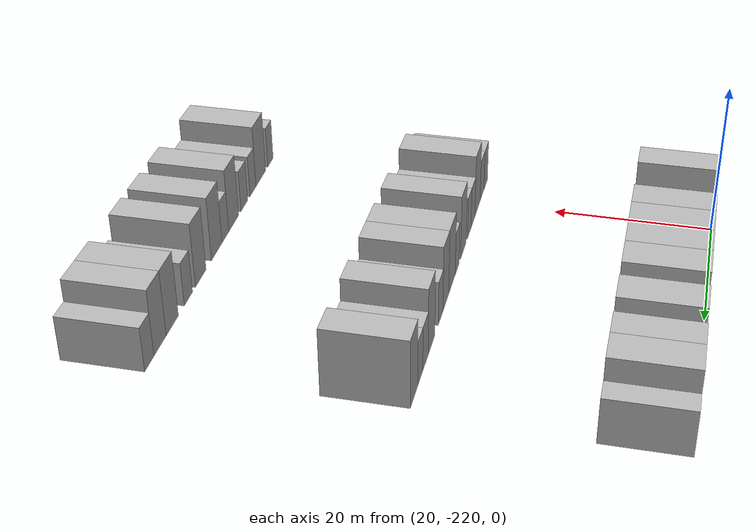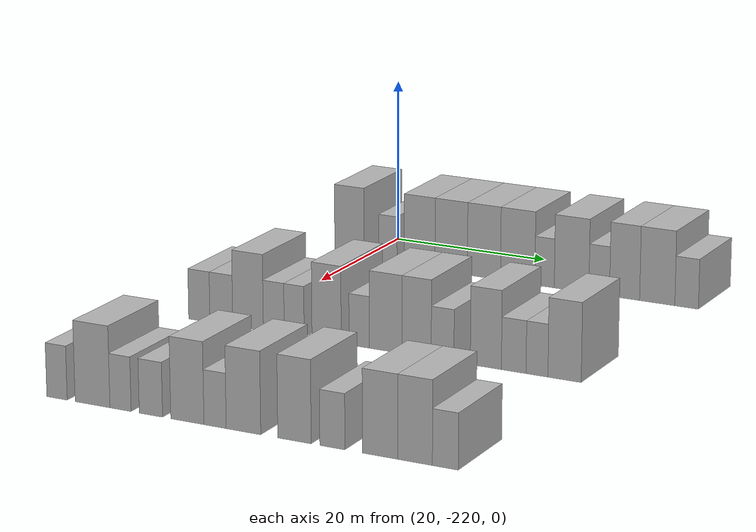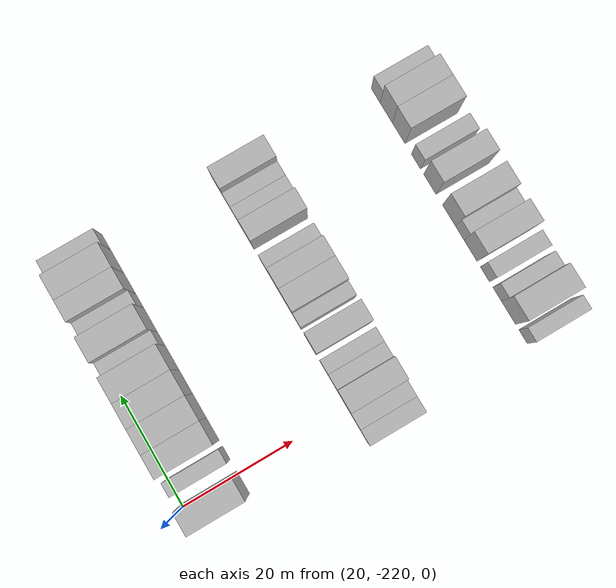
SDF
<sdf version="1.6">
 <world name="default">
  <model name="building_68">
   <static>1</static>
   <pose>25.0000 -221.5466 0 0.000000 0.000000 0.000000</pose>
   <link name="link">
    <pose>0 0 4.50 0 0 0</pose>
    <collision name="collision"><geometry><box><size>10.0000 4.0667 9.0000</size></box></geometry></collision>
    <visual name="visual">
     <cast_shadows>0</cast_shadows>
     <geometry><box><size>10.0000 4.0667 9.0000</size></box></geometry>
     <material>
      <script>
       <uri>model://HANNAS_wall/materials/scripts</uri>
       <uri>model://HANNAS_wall/materials/textures</uri>
       <name>vrc/HANNAS_wall</name>
      </script>
     </material>
    </visual>
   </link>
  </model>
  <model name="building_69">
   <static>1</static>
   <pose>25.0000 -216.2718 0 0.000000 0.000000 0.000000</pose>
   <link name="link">
    <pose>0 0 3.00 0 0 0</pose>
    <collision name="collision"><geometry><box><size>10.0000 2.4829 6.0000</size></box></geometry></collision>
    <visual name="visual">
     <cast_shadows>0</cast_shadows>
     <geometry><box><size>10.0000 2.4829 6.0000</size></box></geometry>
     <material>
      <script>
       <uri>model://HANNAS_wall/materials/scripts</uri>
       <uri>model://HANNAS_wall/materials/textures</uri>
       <name>vrc/HANNAS_wall</name>
      </script>
     </material>
    </visual>
   </link>
  </model>
  <model name="building_70">
   <static>1</static>
   <pose>25.0000 -211.9600 0 0.000000 0.000000 0.000000</pose>
   <link name="link">
    <pose>0 0 4.50 0 0 0</pose>
    <collision name="collision"><geometry><box><size>10.0000 4.1408 9.0000</size></box></geometry></collision>
    <visual name="visual">
     <cast_shadows>0</cast_shadows>
     <geometry><box><size>10.0000 4.1408 9.0000</size></box></geometry>
     <material>
      <script>
       <uri>model://HANNAS_wall/materials/scripts</uri>
       <uri>model://HANNAS_wall/materials/textures</uri>
       <name>vrc/HANNAS_wall</name>
      </script>
     </material>
    </visual>
   </link>
  </model>
  <model name="building_71">
   <static>1</static>
   <pose>25.0000 -207.7153 0 0.000000 0.000000 0.000000</pose>
   <link name="link">
    <pose>0 0 4.50 0 0 0</pose>
    <collision name="collision"><geometry><box><size>10.0000 4.3486 9.0000</size></box></geometry></collision>
    <visual name="visual">
     <cast_shadows>0</cast_shadows>
     <geometry><box><size>10.0000 4.3486 9.0000</size></box></geometry>
     <material>
      <script>
       <uri>model://HANNAS_wall/materials/scripts</uri>
       <uri>model://HANNAS_wall/materials/textures</uri>
       <name>vrc/HANNAS_wall</name>
      </script>
     </material>
    </visual>
   </link>
  </model>
  <model name="building_72">
   <static>1</static>
   <pose>25.0000 -203.3514 0 0.000000 0.000000 0.000000</pose>
   <link name="link">
    <pose>0 0 4.50 0 0 0</pose>
    <collision name="collision"><geometry><box><size>10.0000 4.3791 9.0000</size></box></geometry></collision>
    <visual name="visual">
     <cast_shadows>0</cast_shadows>
     <geometry><box><size>10.0000 4.3791 9.0000</size></box></geometry>
     <material>
      <script>
       <uri>model://HANNAS_wall/materials/scripts</uri>
       <uri>model://HANNAS_wall/materials/textures</uri>
       <name>vrc/HANNAS_wall</name>
      </script>
     </material>
    </visual>
   </link>
  </model>
  <model name="building_73">
   <static>1</static>
   <pose>25.0000 -198.9130 0 0.000000 0.000000 0.000000</pose>
   <link name="link">
    <pose>0 0 4.50 0 0 0</pose>
    <collision name="collision"><geometry><box><size>10.0000 4.4978 9.0000</size></box></geometry></collision>
    <visual name="visual">
     <cast_shadows>0</cast_shadows>
     <geometry><box><size>10.0000 4.4978 9.0000</size></box></geometry>
     <material>
      <script>
       <uri>model://HANNAS_wall/materials/scripts</uri>
       <uri>model://HANNAS_wall/materials/textures</uri>
       <name>vrc/HANNAS_wall</name>
      </script>
     </material>
    </visual>
   </link>
  </model>
  <model name="building_74">
   <static>1</static>
   <pose>25.0000 -195.4027 0 0.000000 0.000000 0.000000</pose>
   <link name="link">
    <pose>0 0 3.00 0 0 0</pose>
    <collision name="collision"><geometry><box><size>10.0000 2.5228 6.0000</size></box></geometry></collision>
    <visual name="visual">
     <cast_shadows>0</cast_shadows>
     <geometry><box><size>10.0000 2.5228 6.0000</size></box></geometry>
     <material>
      <script>
       <uri>model://HANNAS_wall/materials/scripts</uri>
       <uri>model://HANNAS_wall/materials/textures</uri>
       <name>vrc/HANNAS_wall</name>
      </script>
     </material>
    </visual>
   </link>
  </model>
  <model name="building_75">
   <static>1</static>
   <pose>25.0000 -191.9128 0 0.000000 0.000000 0.000000</pose>
   <link name="link">
    <pose>0 0 4.50 0 0 0</pose>
    <collision name="collision"><geometry><box><size>10.0000 4.4570 9.0000</size></box></geometry></collision>
    <visual name="visual">
     <cast_shadows>0</cast_shadows>
     <geometry><box><size>10.0000 4.4570 9.0000</size></box></geometry>
     <material>
      <script>
       <uri>model://HANNAS_wall/materials/scripts</uri>
       <uri>model://HANNAS_wall/materials/textures</uri>
       <name>vrc/HANNAS_wall</name>
      </script>
     </material>
    </visual>
   </link>
  </model>
  <model name="building_76">
   <static>1</static>
   <pose>25.0000 -188.3634 0 0.000000 0.000000 0.000000</pose>
   <link name="link">
    <pose>0 0 3.00 0 0 0</pose>
    <collision name="collision"><geometry><box><size>10.0000 2.6416 6.0000</size></box></geometry></collision>
    <visual name="visual">
     <cast_shadows>0</cast_shadows>
     <geometry><box><size>10.0000 2.6416 6.0000</size></box></geometry>
     <material>
      <script>
       <uri>model://HANNAS_wall/materials/scripts</uri>
       <uri>model://HANNAS_wall/materials/textures</uri>
       <name>vrc/HANNAS_wall</name>
      </script>
     </material>
    </visual>
   </link>
  </model>
  <model name="building_77">
   <static>1</static>
   <pose>25.0000 -185.1366 0 0.000000 0.000000 0.000000</pose>
   <link name="link">
    <pose>0 0 4.50 0 0 0</pose>
    <collision name="collision"><geometry><box><size>10.0000 3.8121 9.0000</size></box></geometry></collision>
    <visual name="visual">
     <cast_shadows>0</cast_shadows>
     <geometry><box><size>10.0000 3.8121 9.0000</size></box></geometry>
     <material>
      <script>
       <uri>model://HANNAS_wall/materials/scripts</uri>
       <uri>model://HANNAS_wall/materials/textures</uri>
       <name>vrc/HANNAS_wall</name>
      </script>
     </material>
    </visual>
   </link>
  </model>
  <model name="building_78">
   <static>1</static>
   <pose>25.0000 -181.0215 0 0.000000 0.000000 0.000000</pose>
   <link name="link">
    <pose>0 0 4.50 0 0 0</pose>
    <collision name="collision"><geometry><box><size>10.0000 4.4180 9.0000</size></box></geometry></collision>
    <visual name="visual">
     <cast_shadows>0</cast_shadows>
     <geometry><box><size>10.0000 4.4180 9.0000</size></box></geometry>
     <material>
      <script>
       <uri>model://HANNAS_wall/materials/scripts</uri>
       <uri>model://HANNAS_wall/materials/textures</uri>
       <name>vrc/HANNAS_wall</name>
      </script>
     </material>
    </visual>
   </link>
  </model>
  <model name="building_79">
   <static>1</static>
   <pose>25.0000 -177.3438 0 0.000000 0.000000 0.000000</pose>
   <link name="link">
    <pose>0 0 3.00 0 0 0</pose>
    <collision name="collision"><geometry><box><size>10.0000 2.9374 6.0000</size></box></geometry></collision>
    <visual name="visual">
     <cast_shadows>0</cast_shadows>
     <geometry><box><size>10.0000 2.9374 6.0000</size></box></geometry>
     <material>
      <script>
       <uri>model://HANNAS_wall/materials/scripts</uri>
       <uri>model://HANNAS_wall/materials/textures</uri>
       <name>vrc/HANNAS_wall</name>
      </script>
     </material>
    </visual>
   </link>
  </model>
  <model name="building_302">
   <static>1</static>
   <pose>55.0000 -224.8862 0 0.000000 0.000000 0.000000</pose>
   <link name="link">
    <pose>0 0 3.00 0 0 0</pose>
    <collision name="collision"><geometry><box><size>10.0000 2.8118 6.0000</size></box></geometry></collision>
    <visual name="visual">
     <cast_shadows>0</cast_shadows>
     <geometry><box><size>10.0000 2.8118 6.0000</size></box></geometry>
     <material>
      <script>
       <uri>model://HANNAS_wall/materials/scripts</uri>
       <uri>model://HANNAS_wall/materials/textures</uri>
       <name>vrc/HANNAS_wall</name>
      </script>
     </material>
    </visual>
   </link>
  </model>
  <model name="building_303">
   <static>1</static>
   <pose>55.0000 -221.9806 0 0.000000 0.000000 0.000000</pose>
   <link name="link">
    <pose>0 0 3.00 0 0 0</pose>
    <collision name="collision"><geometry><box><size>10.0000 2.9994 6.0000</size></box></geometry></collision>
    <visual name="visual">
     <cast_shadows>0</cast_shadows>
     <geometry><box><size>10.0000 2.9994 6.0000</size></box></geometry>
     <material>
      <script>
       <uri>model://HANNAS_wall/materials/scripts</uri>
       <uri>model://HANNAS_wall/materials/textures</uri>
       <name>vrc/HANNAS_wall</name>
      </script>
     </material>
    </visual>
   </link>
  </model>
  <model name="building_304">
   <static>1</static>
   <pose>55.0000 -218.4861 0 0.000000 0.000000 0.000000</pose>
   <link name="link">
    <pose>0 0 4.50 0 0 0</pose>
    <collision name="collision"><geometry><box><size>10.0000 3.9897 9.0000</size></box></geometry></collision>
    <visual name="visual">
     <cast_shadows>0</cast_shadows>
     <geometry><box><size>10.0000 3.9897 9.0000</size></box></geometry>
     <material>
      <script>
       <uri>model://HANNAS_wall/materials/scripts</uri>
       <uri>model://HANNAS_wall/materials/textures</uri>
       <name>vrc/HANNAS_wall</name>
      </script>
     </material>
    </visual>
   </link>
  </model>
  <model name="building_305">
   <static>1</static>
   <pose>55.0000 -215.1418 0 0.000000 0.000000 0.000000</pose>
   <link name="link">
    <pose>0 0 3.00 0 0 0</pose>
    <collision name="collision"><geometry><box><size>10.0000 2.6989 6.0000</size></box></geometry></collision>
    <visual name="visual">
     <cast_shadows>0</cast_shadows>
     <geometry><box><size>10.0000 2.6989 6.0000</size></box></geometry>
     <material>
      <script>
       <uri>model://HANNAS_wall/materials/scripts</uri>
       <uri>model://HANNAS_wall/materials/textures</uri>
       <name>vrc/HANNAS_wall</name>
      </script>
     </material>
    </visual>
   </link>
  </model>
  <model name="building_306">
   <static>1</static>
   <pose>55.0000 -212.5102 0 0.000000 0.000000 0.000000</pose>
   <link name="link">
    <pose>0 0 3.00 0 0 0</pose>
    <collision name="collision"><geometry><box><size>10.0000 2.5643 6.0000</size></box></geometry></collision>
    <visual name="visual">
     <cast_shadows>0</cast_shadows>
     <geometry><box><size>10.0000 2.5643 6.0000</size></box></geometry>
     <material>
      <script>
       <uri>model://HANNAS_wall/materials/scripts</uri>
       <uri>model://HANNAS_wall/materials/textures</uri>
       <name>vrc/HANNAS_wall</name>
      </script>
     </material>
    </visual>
   </link>
  </model>
  <model name="building_307">
   <static>1</static>
   <pose>55.0000 -208.3705 0 0.000000 0.000000 0.000000</pose>
   <link name="link">
    <pose>0 0 4.50 0 0 0</pose>
    <collision name="collision"><geometry><box><size>10.0000 3.7149 9.0000</size></box></geometry></collision>
    <visual name="visual">
     <cast_shadows>0</cast_shadows>
     <geometry><box><size>10.0000 3.7149 9.0000</size></box></geometry>
     <material>
      <script>
       <uri>model://HANNAS_wall/materials/scripts</uri>
       <uri>model://HANNAS_wall/materials/textures</uri>
       <name>vrc/HANNAS_wall</name>
      </script>
     </material>
    </visual>
   </link>
  </model>
  <model name="building_308">
   <static>1</static>
   <pose>55.0000 -204.2377 0 0.000000 0.000000 0.000000</pose>
   <link name="link">
    <pose>0 0 3.00 0 0 0</pose>
    <collision name="collision"><geometry><box><size>10.0000 2.5507 6.0000</size></box></geometry></collision>
    <visual name="visual">
     <cast_shadows>0</cast_shadows>
     <geometry><box><size>10.0000 2.5507 6.0000</size></box></geometry>
     <material>
      <script>
       <uri>model://HANNAS_wall/materials/scripts</uri>
       <uri>model://HANNAS_wall/materials/textures</uri>
       <name>vrc/HANNAS_wall</name>
      </script>
     </material>
    </visual>
   </link>
  </model>
  <model name="building_309">
   <static>1</static>
   <pose>55.0000 -200.9218 0 0.000000 0.000000 0.000000</pose>
   <link name="link">
    <pose>0 0 4.50 0 0 0</pose>
    <collision name="collision"><geometry><box><size>10.0000 4.0811 9.0000</size></box></geometry></collision>
    <visual name="visual">
     <cast_shadows>0</cast_shadows>
     <geometry><box><size>10.0000 4.0811 9.0000</size></box></geometry>
     <material>
      <script>
       <uri>model://HANNAS_wall/materials/scripts</uri>
       <uri>model://HANNAS_wall/materials/textures</uri>
       <name>vrc/HANNAS_wall</name>
      </script>
     </material>
    </visual>
   </link>
  </model>
  <model name="building_310">
   <static>1</static>
   <pose>55.0000 -197.0765 0 0.000000 0.000000 0.000000</pose>
   <link name="link">
    <pose>0 0 4.50 0 0 0</pose>
    <collision name="collision"><geometry><box><size>10.0000 3.6095 9.0000</size></box></geometry></collision>
    <visual name="visual">
     <cast_shadows>0</cast_shadows>
     <geometry><box><size>10.0000 3.6095 9.0000</size></box></geometry>
     <material>
      <script>
       <uri>model://HANNAS_wall/materials/scripts</uri>
       <uri>model://HANNAS_wall/materials/textures</uri>
       <name>vrc/HANNAS_wall</name>
      </script>
     </material>
    </visual>
   </link>
  </model>
  <model name="building_311">
   <static>1</static>
   <pose>55.0000 -193.8818 0 0.000000 0.000000 0.000000</pose>
   <link name="link">
    <pose>0 0 3.00 0 0 0</pose>
    <collision name="collision"><geometry><box><size>10.0000 2.7800 6.0000</size></box></geometry></collision>
    <visual name="visual">
     <cast_shadows>0</cast_shadows>
     <geometry><box><size>10.0000 2.7800 6.0000</size></box></geometry>
     <material>
      <script>
       <uri>model://HANNAS_wall/materials/scripts</uri>
       <uri>model://HANNAS_wall/materials/textures</uri>
       <name>vrc/HANNAS_wall</name>
      </script>
     </material>
    </visual>
   </link>
  </model>
  <model name="building_312">
   <static>1</static>
   <pose>55.0000 -188.6140 0 0.000000 0.000000 0.000000</pose>
   <link name="link">
    <pose>0 0 4.50 0 0 0</pose>
    <collision name="collision"><geometry><box><size>10.0000 3.7556 9.0000</size></box></geometry></collision>
    <visual name="visual">
     <cast_shadows>0</cast_shadows>
     <geometry><box><size>10.0000 3.7556 9.0000</size></box></geometry>
     <material>
      <script>
       <uri>model://HANNAS_wall/materials/scripts</uri>
       <uri>model://HANNAS_wall/materials/textures</uri>
       <name>vrc/HANNAS_wall</name>
      </script>
     </material>
    </visual>
   </link>
  </model>
  <model name="building_313">
   <static>1</static>
   <pose>55.0000 -185.2572 0 0.000000 0.000000 0.000000</pose>
   <link name="link">
    <pose>0 0 3.00 0 0 0</pose>
    <collision name="collision"><geometry><box><size>10.0000 2.9581 6.0000</size></box></geometry></collision>
    <visual name="visual">
     <cast_shadows>0</cast_shadows>
     <geometry><box><size>10.0000 2.9581 6.0000</size></box></geometry>
     <material>
      <script>
       <uri>model://HANNAS_wall/materials/scripts</uri>
       <uri>model://HANNAS_wall/materials/textures</uri>
       <name>vrc/HANNAS_wall</name>
      </script>
     </material>
    </visual>
   </link>
  </model>
  <model name="building_314">
   <static>1</static>
   <pose>55.0000 -182.4804 0 0.000000 0.000000 0.000000</pose>
   <link name="link">
    <pose>0 0 3.00 0 0 0</pose>
    <collision name="collision"><geometry><box><size>10.0000 2.5955 6.0000</size></box></geometry></collision>
    <visual name="visual">
     <cast_shadows>0</cast_shadows>
     <geometry><box><size>10.0000 2.5955 6.0000</size></box></geometry>
     <material>
      <script>
       <uri>model://HANNAS_wall/materials/scripts</uri>
       <uri>model://HANNAS_wall/materials/textures</uri>
       <name>vrc/HANNAS_wall</name>
      </script>
     </material>
    </visual>
   </link>
  </model>
  <model name="building_315">
   <static>1</static>
   <pose>55.0000 -179.2193 0 0.000000 0.000000 0.000000</pose>
   <link name="link">
    <pose>0 0 4.50 0 0 0</pose>
    <collision name="collision"><geometry><box><size>10.0000 3.9267 9.0000</size></box></geometry></collision>
    <visual name="visual">
     <cast_shadows>0</cast_shadows>
     <geometry><box><size>10.0000 3.9267 9.0000</size></box></geometry>
     <material>
      <script>
       <uri>model://HANNAS_wall/materials/scripts</uri>
       <uri>model://HANNAS_wall/materials/textures</uri>
       <name>vrc/HANNAS_wall</name>
      </script>
     </material>
    </visual>
   </link>
  </model>
  <model name="building_540">
   <static>1</static>
   <pose>85.0000 -224.4523 0 0.000000 0.000000 0.000000</pose>
   <link name="link">
    <pose>0 0 3.00 0 0 0</pose>
    <collision name="collision"><geometry><box><size>10.0000 2.5542 6.0000</size></box></geometry></collision>
    <visual name="visual">
     <cast_shadows>0</cast_shadows>
     <geometry><box><size>10.0000 2.5542 6.0000</size></box></geometry>
     <material>
      <script>
       <uri>model://HANNAS_wall/materials/scripts</uri>
       <uri>model://HANNAS_wall/materials/textures</uri>
       <name>vrc/HANNAS_wall</name>
      </script>
     </material>
    </visual>
   </link>
  </model>
  <model name="building_541">
   <static>1</static>
   <pose>85.0000 -220.0117 0 0.000000 0.000000 0.000000</pose>
   <link name="link">
    <pose>0 0 4.50 0 0 0</pose>
    <collision name="collision"><geometry><box><size>10.0000 4.3270 9.0000</size></box></geometry></collision>
    <visual name="visual">
     <cast_shadows>0</cast_shadows>
     <geometry><box><size>10.0000 4.3270 9.0000</size></box></geometry>
     <material>
      <script>
       <uri>model://HANNAS_wall/materials/scripts</uri>
       <uri>model://HANNAS_wall/materials/textures</uri>
       <name>vrc/HANNAS_wall</name>
      </script>
     </material>
    </visual>
   </link>
  </model>
  <model name="building_542">
   <static>1</static>
   <pose>85.0000 -216.5463 0 0.000000 0.000000 0.000000</pose>
   <link name="link">
    <pose>0 0 3.00 0 0 0</pose>
    <collision name="collision"><geometry><box><size>10.0000 2.6039 6.0000</size></box></geometry></collision>
    <visual name="visual">
     <cast_shadows>0</cast_shadows>
     <geometry><box><size>10.0000 2.6039 6.0000</size></box></geometry>
     <material>
      <script>
       <uri>model://HANNAS_wall/materials/scripts</uri>
       <uri>model://HANNAS_wall/materials/textures</uri>
       <name>vrc/HANNAS_wall</name>
      </script>
     </material>
    </visual>
   </link>
  </model>
  <model name="building_543">
   <static>1</static>
   <pose>85.0000 -212.8261 0 0.000000 0.000000 0.000000</pose>
   <link name="link">
    <pose>0 0 3.00 0 0 0</pose>
    <collision name="collision"><geometry><box><size>10.0000 2.8364 6.0000</size></box></geometry></collision>
    <visual name="visual">
     <cast_shadows>0</cast_shadows>
     <geometry><box><size>10.0000 2.8364 6.0000</size></box></geometry>
     <material>
      <script>
       <uri>model://HANNAS_wall/materials/scripts</uri>
       <uri>model://HANNAS_wall/materials/textures</uri>
       <name>vrc/HANNAS_wall</name>
      </script>
     </material>
    </visual>
   </link>
  </model>
  <model name="building_544">
   <static>1</static>
   <pose>85.0000 -208.4075 0 0.000000 0.000000 0.000000</pose>
   <link name="link">
    <pose>0 0 4.50 0 0 0</pose>
    <collision name="collision"><geometry><box><size>10.0000 4.0008 9.0000</size></box></geometry></collision>
    <visual name="visual">
     <cast_shadows>0</cast_shadows>
     <geometry><box><size>10.0000 4.0008 9.0000</size></box></geometry>
     <material>
      <script>
       <uri>model://HANNAS_wall/materials/scripts</uri>
       <uri>model://HANNAS_wall/materials/textures</uri>
       <name>vrc/HANNAS_wall</name>
      </script>
     </material>
    </visual>
   </link>
  </model>
  <model name="building_545">
   <static>1</static>
   <pose>85.0000 -205.0799 0 0.000000 0.000000 0.000000</pose>
   <link name="link">
    <pose>0 0 3.00 0 0 0</pose>
    <collision name="collision"><geometry><box><size>10.0000 2.6545 6.0000</size></box></geometry></collision>
    <visual name="visual">
     <cast_shadows>0</cast_shadows>
     <geometry><box><size>10.0000 2.6545 6.0000</size></box></geometry>
     <material>
      <script>
       <uri>model://HANNAS_wall/materials/scripts</uri>
       <uri>model://HANNAS_wall/materials/textures</uri>
       <name>vrc/HANNAS_wall</name>
      </script>
     </material>
    </visual>
   </link>
  </model>
  <model name="building_546">
   <static>1</static>
   <pose>85.0000 -201.7120 0 0.000000 0.000000 0.000000</pose>
   <link name="link">
    <pose>0 0 4.50 0 0 0</pose>
    <collision name="collision"><geometry><box><size>10.0000 4.0812 9.0000</size></box></geometry></collision>
    <visual name="visual">
     <cast_shadows>0</cast_shadows>
     <geometry><box><size>10.0000 4.0812 9.0000</size></box></geometry>
     <material>
      <script>
       <uri>model://HANNAS_wall/materials/scripts</uri>
       <uri>model://HANNAS_wall/materials/textures</uri>
       <name>vrc/HANNAS_wall</name>
      </script>
     </material>
    </visual>
   </link>
  </model>
  <model name="building_547">
   <static>1</static>
   <pose>85.0000 -195.7279 0 0.000000 0.000000 0.000000</pose>
   <link name="link">
    <pose>0 0 4.50 0 0 0</pose>
    <collision name="collision"><geometry><box><size>10.0000 3.8871 9.0000</size></box></geometry></collision>
    <visual name="visual">
     <cast_shadows>0</cast_shadows>
     <geometry><box><size>10.0000 3.8871 9.0000</size></box></geometry>
     <material>
      <script>
       <uri>model://HANNAS_wall/materials/scripts</uri>
       <uri>model://HANNAS_wall/materials/textures</uri>
       <name>vrc/HANNAS_wall</name>
      </script>
     </material>
    </visual>
   </link>
  </model>
  <model name="building_548">
   <static>1</static>
   <pose>85.0000 -191.3432 0 0.000000 0.000000 0.000000</pose>
   <link name="link">
    <pose>0 0 3.00 0 0 0</pose>
    <collision name="collision"><geometry><box><size>10.0000 2.8822 6.0000</size></box></geometry></collision>
    <visual name="visual">
     <cast_shadows>0</cast_shadows>
     <geometry><box><size>10.0000 2.8822 6.0000</size></box></geometry>
     <material>
      <script>
       <uri>model://HANNAS_wall/materials/scripts</uri>
       <uri>model://HANNAS_wall/materials/textures</uri>
       <name>vrc/HANNAS_wall</name>
      </script>
     </material>
    </visual>
   </link>
  </model>
  <model name="building_549">
   <static>1</static>
   <pose>85.0000 -185.9020 0 0.000000 0.000000 0.000000</pose>
   <link name="link">
    <pose>0 0 4.50 0 0 0</pose>
    <collision name="collision"><geometry><box><size>10.0000 4.0002 9.0000</size></box></geometry></collision>
    <visual name="visual">
     <cast_shadows>0</cast_shadows>
     <geometry><box><size>10.0000 4.0002 9.0000</size></box></geometry>
     <material>
      <script>
       <uri>model://HANNAS_wall/materials/scripts</uri>
       <uri>model://HANNAS_wall/materials/textures</uri>
       <name>vrc/HANNAS_wall</name>
      </script>
     </material>
    </visual>
   </link>
  </model>
  <model name="building_550">
   <static>1</static>
   <pose>85.0000 -181.9650 0 0.000000 0.000000 0.000000</pose>
   <link name="link">
    <pose>0 0 4.50 0 0 0</pose>
    <collision name="collision"><geometry><box><size>10.0000 3.8738 9.0000</size></box></geometry></collision>
    <visual name="visual">
     <cast_shadows>0</cast_shadows>
     <geometry><box><size>10.0000 3.8738 9.0000</size></box></geometry>
     <material>
      <script>
       <uri>model://HANNAS_wall/materials/scripts</uri>
       <uri>model://HANNAS_wall/materials/textures</uri>
       <name>vrc/HANNAS_wall</name>
      </script>
     </material>
    </visual>
   </link>
  </model>
  <model name="building_551">
   <static>1</static>
   <pose>85.0000 -178.5884 0 0.000000 0.000000 0.000000</pose>
   <link name="link">
    <pose>0 0 3.00 0 0 0</pose>
    <collision name="collision"><geometry><box><size>10.0000 2.8793 6.0000</size></box></geometry></collision>
    <visual name="visual">
     <cast_shadows>0</cast_shadows>
     <geometry><box><size>10.0000 2.8793 6.0000</size></box></geometry>
     <material>
      <script>
       <uri>model://HANNAS_wall/materials/scripts</uri>
       <uri>model://HANNAS_wall/materials/textures</uri>
       <name>vrc/HANNAS_wall</name>
      </script>
     </material>
    </visual>
   </link>
  </model>
 </world>
</sdf>
